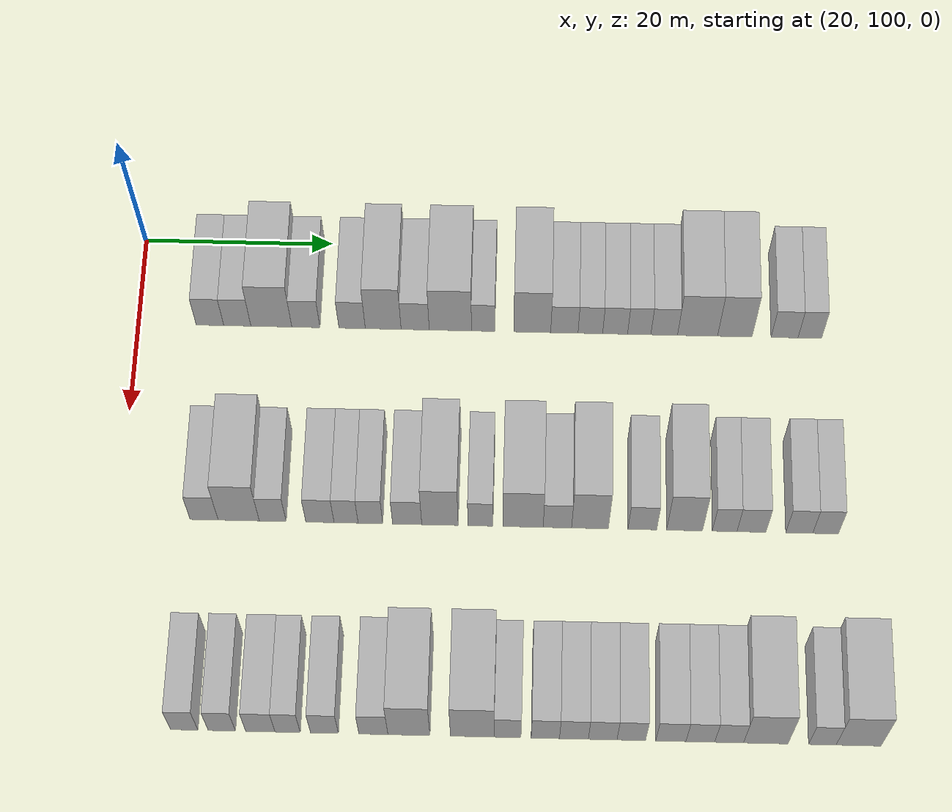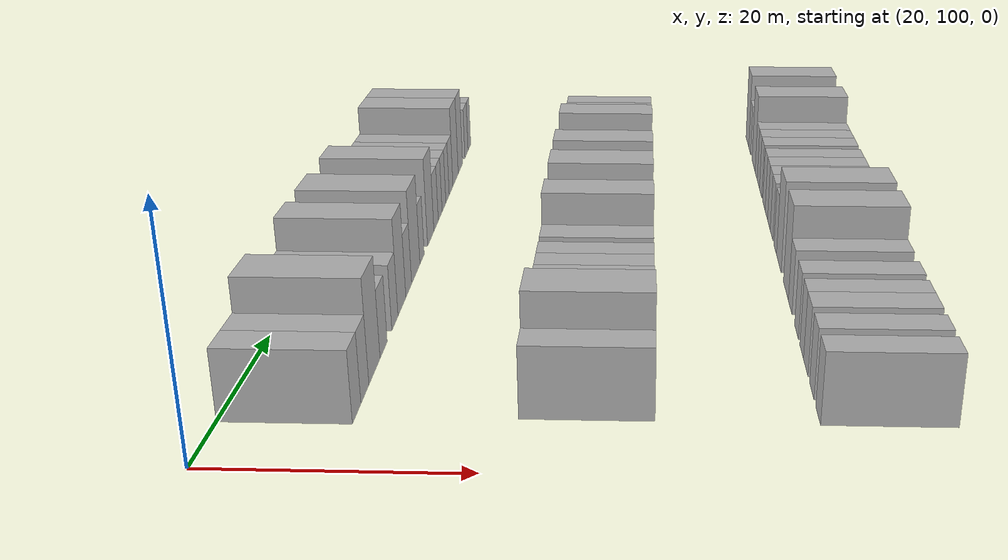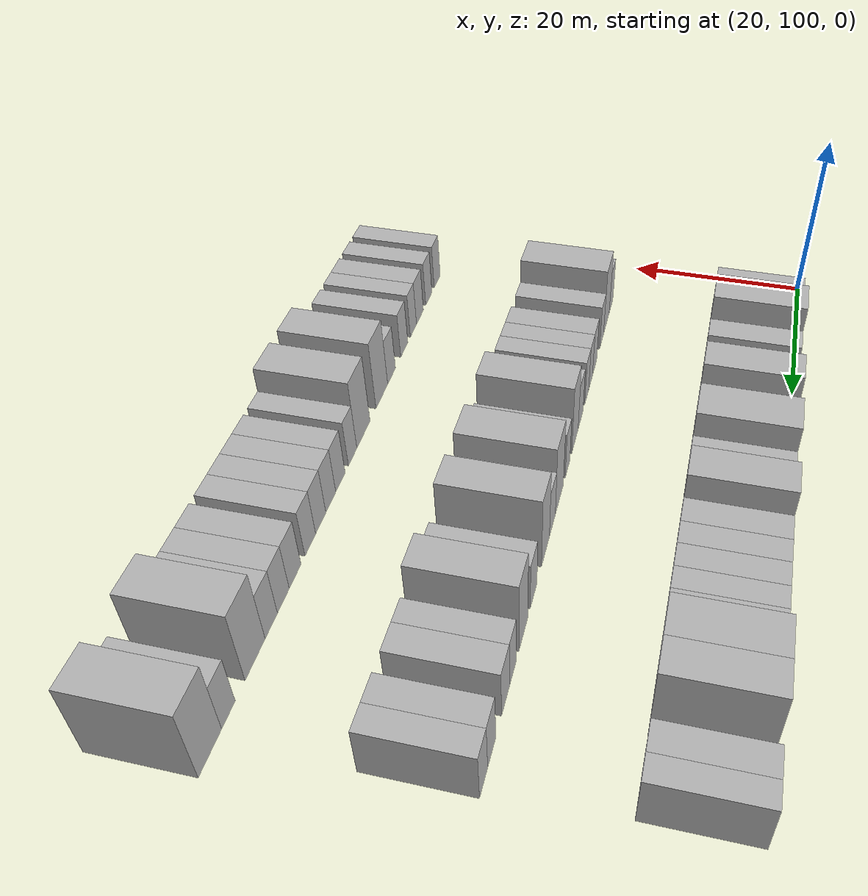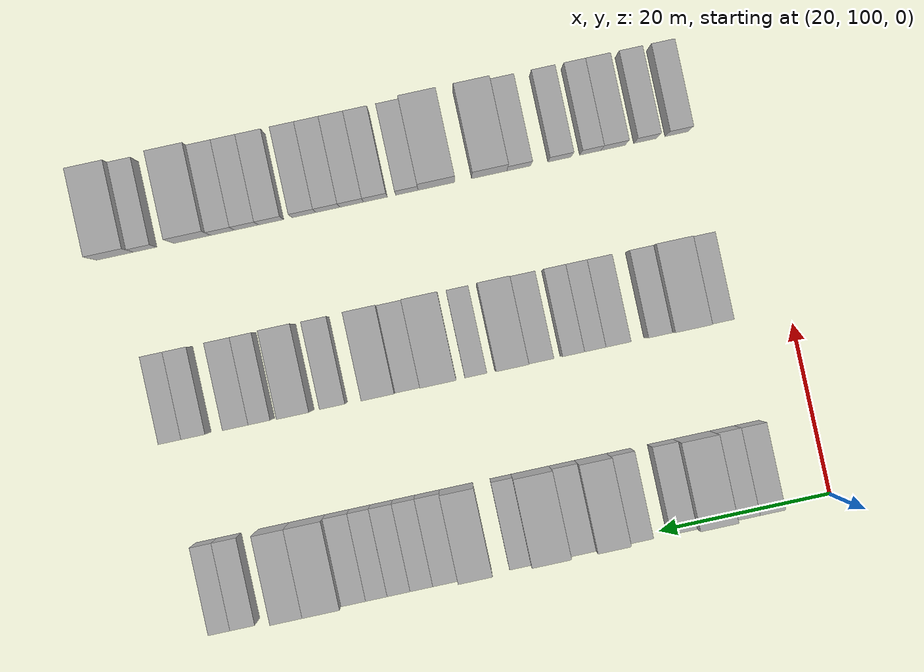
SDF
<sdf version="1.6">
 <world name="default">
  <model name="building_86">
   <static>1</static>
   <pose>25.0000 107.5922 0 0.000000 0.000000 0.000000</pose>
   <link name="link">
    <pose>0 0 3.00 0 0 0</pose>
    <collision name="collision"><geometry><box><size>10.0000 2.9048 6.0000</size></box></geometry></collision>
    <visual name="visual">
     <cast_shadows>0</cast_shadows>
     <geometry><box><size>10.0000 2.9048 6.0000</size></box></geometry>
     <material>
      <script>
       <uri>model://HANNAS_wall/materials/scripts</uri>
       <uri>model://HANNAS_wall/materials/textures</uri>
       <name>vrc/HANNAS_wall</name>
      </script>
     </material>
    </visual>
   </link>
  </model>
  <model name="building_87">
   <static>1</static>
   <pose>25.0000 110.4816 0 0.000000 0.000000 0.000000</pose>
   <link name="link">
    <pose>0 0 3.00 0 0 0</pose>
    <collision name="collision"><geometry><box><size>10.0000 2.8739 6.0000</size></box></geometry></collision>
    <visual name="visual">
     <cast_shadows>0</cast_shadows>
     <geometry><box><size>10.0000 2.8739 6.0000</size></box></geometry>
     <material>
      <script>
       <uri>model://HANNAS_wall/materials/scripts</uri>
       <uri>model://HANNAS_wall/materials/textures</uri>
       <name>vrc/HANNAS_wall</name>
      </script>
     </material>
    </visual>
   </link>
  </model>
  <model name="building_88">
   <static>1</static>
   <pose>25.0000 114.0790 0 0.000000 0.000000 0.000000</pose>
   <link name="link">
    <pose>0 0 4.50 0 0 0</pose>
    <collision name="collision"><geometry><box><size>10.0000 4.3209 9.0000</size></box></geometry></collision>
    <visual name="visual">
     <cast_shadows>0</cast_shadows>
     <geometry><box><size>10.0000 4.3209 9.0000</size></box></geometry>
     <material>
      <script>
       <uri>model://HANNAS_wall/materials/scripts</uri>
       <uri>model://HANNAS_wall/materials/textures</uri>
       <name>vrc/HANNAS_wall</name>
      </script>
     </material>
    </visual>
   </link>
  </model>
  <model name="building_89">
   <static>1</static>
   <pose>25.0000 117.7277 0 0.000000 0.000000 0.000000</pose>
   <link name="link">
    <pose>0 0 3.00 0 0 0</pose>
    <collision name="collision"><geometry><box><size>10.0000 2.9766 6.0000</size></box></geometry></collision>
    <visual name="visual">
     <cast_shadows>0</cast_shadows>
     <geometry><box><size>10.0000 2.9766 6.0000</size></box></geometry>
     <material>
      <script>
       <uri>model://HANNAS_wall/materials/scripts</uri>
       <uri>model://HANNAS_wall/materials/textures</uri>
       <name>vrc/HANNAS_wall</name>
      </script>
     </material>
    </visual>
   </link>
  </model>
  <model name="building_90">
   <static>1</static>
   <pose>25.0000 122.6110 0 0.000000 0.000000 0.000000</pose>
   <link name="link">
    <pose>0 0 3.00 0 0 0</pose>
    <collision name="collision"><geometry><box><size>10.0000 2.7901 6.0000</size></box></geometry></collision>
    <visual name="visual">
     <cast_shadows>0</cast_shadows>
     <geometry><box><size>10.0000 2.7901 6.0000</size></box></geometry>
     <material>
      <script>
       <uri>model://HANNAS_wall/materials/scripts</uri>
       <uri>model://HANNAS_wall/materials/textures</uri>
       <name>vrc/HANNAS_wall</name>
      </script>
     </material>
    </visual>
   </link>
  </model>
  <model name="building_91">
   <static>1</static>
   <pose>25.0000 125.8944 0 0.000000 0.000000 0.000000</pose>
   <link name="link">
    <pose>0 0 4.50 0 0 0</pose>
    <collision name="collision"><geometry><box><size>10.0000 3.7767 9.0000</size></box></geometry></collision>
    <visual name="visual">
     <cast_shadows>0</cast_shadows>
     <geometry><box><size>10.0000 3.7767 9.0000</size></box></geometry>
     <material>
      <script>
       <uri>model://HANNAS_wall/materials/scripts</uri>
       <uri>model://HANNAS_wall/materials/textures</uri>
       <name>vrc/HANNAS_wall</name>
      </script>
     </material>
    </visual>
   </link>
  </model>
  <model name="building_92">
   <static>1</static>
   <pose>25.0000 129.2664 0 0.000000 0.000000 0.000000</pose>
   <link name="link">
    <pose>0 0 3.00 0 0 0</pose>
    <collision name="collision"><geometry><box><size>10.0000 2.9674 6.0000</size></box></geometry></collision>
    <visual name="visual">
     <cast_shadows>0</cast_shadows>
     <geometry><box><size>10.0000 2.9674 6.0000</size></box></geometry>
     <material>
      <script>
       <uri>model://HANNAS_wall/materials/scripts</uri>
       <uri>model://HANNAS_wall/materials/textures</uri>
       <name>vrc/HANNAS_wall</name>
      </script>
     </material>
    </visual>
   </link>
  </model>
  <model name="building_93">
   <static>1</static>
   <pose>25.0000 132.9837 0 0.000000 0.000000 0.000000</pose>
   <link name="link">
    <pose>0 0 4.50 0 0 0</pose>
    <collision name="collision"><geometry><box><size>10.0000 4.4673 9.0000</size></box></geometry></collision>
    <visual name="visual">
     <cast_shadows>0</cast_shadows>
     <geometry><box><size>10.0000 4.4673 9.0000</size></box></geometry>
     <material>
      <script>
       <uri>model://HANNAS_wall/materials/scripts</uri>
       <uri>model://HANNAS_wall/materials/textures</uri>
       <name>vrc/HANNAS_wall</name>
      </script>
     </material>
    </visual>
   </link>
  </model>
  <model name="building_94">
   <static>1</static>
   <pose>25.0000 136.4413 0 0.000000 0.000000 0.000000</pose>
   <link name="link">
    <pose>0 0 3.00 0 0 0</pose>
    <collision name="collision"><geometry><box><size>10.0000 2.4478 6.0000</size></box></geometry></collision>
    <visual name="visual">
     <cast_shadows>0</cast_shadows>
     <geometry><box><size>10.0000 2.4478 6.0000</size></box></geometry>
     <material>
      <script>
       <uri>model://HANNAS_wall/materials/scripts</uri>
       <uri>model://HANNAS_wall/materials/textures</uri>
       <name>vrc/HANNAS_wall</name>
      </script>
     </material>
    </visual>
   </link>
  </model>
  <model name="building_95">
   <static>1</static>
   <pose>25.0000 141.6121 0 0.000000 0.000000 0.000000</pose>
   <link name="link">
    <pose>0 0 4.50 0 0 0</pose>
    <collision name="collision"><geometry><box><size>10.0000 3.8937 9.0000</size></box></geometry></collision>
    <visual name="visual">
     <cast_shadows>0</cast_shadows>
     <geometry><box><size>10.0000 3.8937 9.0000</size></box></geometry>
     <material>
      <script>
       <uri>model://HANNAS_wall/materials/scripts</uri>
       <uri>model://HANNAS_wall/materials/textures</uri>
       <name>vrc/HANNAS_wall</name>
      </script>
     </material>
    </visual>
   </link>
  </model>
  <model name="building_96">
   <static>1</static>
   <pose>25.0000 144.9991 0 0.000000 0.000000 0.000000</pose>
   <link name="link">
    <pose>0 0 3.00 0 0 0</pose>
    <collision name="collision"><geometry><box><size>10.0000 2.8804 6.0000</size></box></geometry></collision>
    <visual name="visual">
     <cast_shadows>0</cast_shadows>
     <geometry><box><size>10.0000 2.8804 6.0000</size></box></geometry>
     <material>
      <script>
       <uri>model://HANNAS_wall/materials/scripts</uri>
       <uri>model://HANNAS_wall/materials/textures</uri>
       <name>vrc/HANNAS_wall</name>
      </script>
     </material>
    </visual>
   </link>
  </model>
  <model name="building_97">
   <static>1</static>
   <pose>25.0000 147.7359 0 0.000000 0.000000 0.000000</pose>
   <link name="link">
    <pose>0 0 3.00 0 0 0</pose>
    <collision name="collision"><geometry><box><size>10.0000 2.5932 6.0000</size></box></geometry></collision>
    <visual name="visual">
     <cast_shadows>0</cast_shadows>
     <geometry><box><size>10.0000 2.5932 6.0000</size></box></geometry>
     <material>
      <script>
       <uri>model://HANNAS_wall/materials/scripts</uri>
       <uri>model://HANNAS_wall/materials/textures</uri>
       <name>vrc/HANNAS_wall</name>
      </script>
     </material>
    </visual>
   </link>
  </model>
  <model name="building_98">
   <static>1</static>
   <pose>25.0000 150.3441 0 0.000000 0.000000 0.000000</pose>
   <link name="link">
    <pose>0 0 3.00 0 0 0</pose>
    <collision name="collision"><geometry><box><size>10.0000 2.6233 6.0000</size></box></geometry></collision>
    <visual name="visual">
     <cast_shadows>0</cast_shadows>
     <geometry><box><size>10.0000 2.6233 6.0000</size></box></geometry>
     <material>
      <script>
       <uri>model://HANNAS_wall/materials/scripts</uri>
       <uri>model://HANNAS_wall/materials/textures</uri>
       <name>vrc/HANNAS_wall</name>
      </script>
     </material>
    </visual>
   </link>
  </model>
  <model name="building_99">
   <static>1</static>
   <pose>25.0000 152.8840 0 0.000000 0.000000 0.000000</pose>
   <link name="link">
    <pose>0 0 3.00 0 0 0</pose>
    <collision name="collision"><geometry><box><size>10.0000 2.4564 6.0000</size></box></geometry></collision>
    <visual name="visual">
     <cast_shadows>0</cast_shadows>
     <geometry><box><size>10.0000 2.4564 6.0000</size></box></geometry>
     <material>
      <script>
       <uri>model://HANNAS_wall/materials/scripts</uri>
       <uri>model://HANNAS_wall/materials/textures</uri>
       <name>vrc/HANNAS_wall</name>
      </script>
     </material>
    </visual>
   </link>
  </model>
  <model name="building_100">
   <static>1</static>
   <pose>25.0000 155.5164 0 0.000000 0.000000 0.000000</pose>
   <link name="link">
    <pose>0 0 3.00 0 0 0</pose>
    <collision name="collision"><geometry><box><size>10.0000 2.8085 6.0000</size></box></geometry></collision>
    <visual name="visual">
     <cast_shadows>0</cast_shadows>
     <geometry><box><size>10.0000 2.8085 6.0000</size></box></geometry>
     <material>
      <script>
       <uri>model://HANNAS_wall/materials/scripts</uri>
       <uri>model://HANNAS_wall/materials/textures</uri>
       <name>vrc/HANNAS_wall</name>
      </script>
     </material>
    </visual>
   </link>
  </model>
  <model name="building_101">
   <static>1</static>
   <pose>25.0000 159.0299 0 0.000000 0.000000 0.000000</pose>
   <link name="link">
    <pose>0 0 4.50 0 0 0</pose>
    <collision name="collision"><geometry><box><size>10.0000 4.2185 9.0000</size></box></geometry></collision>
    <visual name="visual">
     <cast_shadows>0</cast_shadows>
     <geometry><box><size>10.0000 4.2185 9.0000</size></box></geometry>
     <material>
      <script>
       <uri>model://HANNAS_wall/materials/scripts</uri>
       <uri>model://HANNAS_wall/materials/textures</uri>
       <name>vrc/HANNAS_wall</name>
      </script>
     </material>
    </visual>
   </link>
  </model>
  <model name="building_102">
   <static>1</static>
   <pose>25.0000 162.9549 0 0.000000 0.000000 0.000000</pose>
   <link name="link">
    <pose>0 0 4.50 0 0 0</pose>
    <collision name="collision"><geometry><box><size>10.0000 3.6315 9.0000</size></box></geometry></collision>
    <visual name="visual">
     <cast_shadows>0</cast_shadows>
     <geometry><box><size>10.0000 3.6315 9.0000</size></box></geometry>
     <material>
      <script>
       <uri>model://HANNAS_wall/materials/scripts</uri>
       <uri>model://HANNAS_wall/materials/textures</uri>
       <name>vrc/HANNAS_wall</name>
      </script>
     </material>
    </visual>
   </link>
  </model>
  <model name="building_103">
   <static>1</static>
   <pose>25.0000 168.1900 0 0.000000 0.000000 0.000000</pose>
   <link name="link">
    <pose>0 0 3.00 0 0 0</pose>
    <collision name="collision"><geometry><box><size>10.0000 2.8386 6.0000</size></box></geometry></collision>
    <visual name="visual">
     <cast_shadows>0</cast_shadows>
     <geometry><box><size>10.0000 2.8386 6.0000</size></box></geometry>
     <material>
      <script>
       <uri>model://HANNAS_wall/materials/scripts</uri>
       <uri>model://HANNAS_wall/materials/textures</uri>
       <name>vrc/HANNAS_wall</name>
      </script>
     </material>
    </visual>
   </link>
  </model>
  <model name="building_104">
   <static>1</static>
   <pose>25.0000 170.8511 0 0.000000 0.000000 0.000000</pose>
   <link name="link">
    <pose>0 0 3.00 0 0 0</pose>
    <collision name="collision"><geometry><box><size>10.0000 2.4836 6.0000</size></box></geometry></collision>
    <visual name="visual">
     <cast_shadows>0</cast_shadows>
     <geometry><box><size>10.0000 2.4836 6.0000</size></box></geometry>
     <material>
      <script>
       <uri>model://HANNAS_wall/materials/scripts</uri>
       <uri>model://HANNAS_wall/materials/textures</uri>
       <name>vrc/HANNAS_wall</name>
      </script>
     </material>
    </visual>
   </link>
  </model>
  <model name="building_216">
   <static>1</static>
   <pose>47.0000 108.6638 0 0.000000 0.000000 0.000000</pose>
   <link name="link">
    <pose>0 0 3.00 0 0 0</pose>
    <collision name="collision"><geometry><box><size>10.0000 2.8547 6.0000</size></box></geometry></collision>
    <visual name="visual">
     <cast_shadows>0</cast_shadows>
     <geometry><box><size>10.0000 2.8547 6.0000</size></box></geometry>
     <material>
      <script>
       <uri>model://HANNAS_wall/materials/scripts</uri>
       <uri>model://HANNAS_wall/materials/textures</uri>
       <name>vrc/HANNAS_wall</name>
      </script>
     </material>
    </visual>
   </link>
  </model>
  <model name="building_217">
   <static>1</static>
   <pose>47.0000 112.1832 0 0.000000 0.000000 0.000000</pose>
   <link name="link">
    <pose>0 0 4.50 0 0 0</pose>
    <collision name="collision"><geometry><box><size>10.0000 4.1841 9.0000</size></box></geometry></collision>
    <visual name="visual">
     <cast_shadows>0</cast_shadows>
     <geometry><box><size>10.0000 4.1841 9.0000</size></box></geometry>
     <material>
      <script>
       <uri>model://HANNAS_wall/materials/scripts</uri>
       <uri>model://HANNAS_wall/materials/textures</uri>
       <name>vrc/HANNAS_wall</name>
      </script>
     </material>
    </visual>
   </link>
  </model>
  <model name="building_218">
   <static>1</static>
   <pose>47.0000 115.6416 0 0.000000 0.000000 0.000000</pose>
   <link name="link">
    <pose>0 0 3.00 0 0 0</pose>
    <collision name="collision"><geometry><box><size>10.0000 2.7327 6.0000</size></box></geometry></collision>
    <visual name="visual">
     <cast_shadows>0</cast_shadows>
     <geometry><box><size>10.0000 2.7327 6.0000</size></box></geometry>
     <material>
      <script>
       <uri>model://HANNAS_wall/materials/scripts</uri>
       <uri>model://HANNAS_wall/materials/textures</uri>
       <name>vrc/HANNAS_wall</name>
      </script>
     </material>
    </visual>
   </link>
  </model>
  <model name="building_219">
   <static>1</static>
   <pose>47.0000 120.4412 0 0.000000 0.000000 0.000000</pose>
   <link name="link">
    <pose>0 0 3.00 0 0 0</pose>
    <collision name="collision"><geometry><box><size>10.0000 2.8663 6.0000</size></box></geometry></collision>
    <visual name="visual">
     <cast_shadows>0</cast_shadows>
     <geometry><box><size>10.0000 2.8663 6.0000</size></box></geometry>
     <material>
      <script>
       <uri>model://HANNAS_wall/materials/scripts</uri>
       <uri>model://HANNAS_wall/materials/textures</uri>
       <name>vrc/HANNAS_wall</name>
      </script>
     </material>
    </visual>
   </link>
  </model>
  <model name="building_220">
   <static>1</static>
   <pose>47.0000 123.0964 0 0.000000 0.000000 0.000000</pose>
   <link name="link">
    <pose>0 0 3.00 0 0 0</pose>
    <collision name="collision"><geometry><box><size>10.0000 2.4441 6.0000</size></box></geometry></collision>
    <visual name="visual">
     <cast_shadows>0</cast_shadows>
     <geometry><box><size>10.0000 2.4441 6.0000</size></box></geometry>
     <material>
      <script>
       <uri>model://HANNAS_wall/materials/scripts</uri>
       <uri>model://HANNAS_wall/materials/textures</uri>
       <name>vrc/HANNAS_wall</name>
      </script>
     </material>
    </visual>
   </link>
  </model>
  <model name="building_221">
   <static>1</static>
   <pose>47.0000 125.5714 0 0.000000 0.000000 0.000000</pose>
   <link name="link">
    <pose>0 0 3.00 0 0 0</pose>
    <collision name="collision"><geometry><box><size>10.0000 2.5059 6.0000</size></box></geometry></collision>
    <visual name="visual">
     <cast_shadows>0</cast_shadows>
     <geometry><box><size>10.0000 2.5059 6.0000</size></box></geometry>
     <material>
      <script>
       <uri>model://HANNAS_wall/materials/scripts</uri>
       <uri>model://HANNAS_wall/materials/textures</uri>
       <name>vrc/HANNAS_wall</name>
      </script>
     </material>
    </visual>
   </link>
  </model>
  <model name="building_222">
   <static>1</static>
   <pose>47.0000 129.3030 0 0.000000 0.000000 0.000000</pose>
   <link name="link">
    <pose>0 0 3.00 0 0 0</pose>
    <collision name="collision"><geometry><box><size>10.0000 2.9573 6.0000</size></box></geometry></collision>
    <visual name="visual">
     <cast_shadows>0</cast_shadows>
     <geometry><box><size>10.0000 2.9573 6.0000</size></box></geometry>
     <material>
      <script>
       <uri>model://HANNAS_wall/materials/scripts</uri>
       <uri>model://HANNAS_wall/materials/textures</uri>
       <name>vrc/HANNAS_wall</name>
      </script>
     </material>
    </visual>
   </link>
  </model>
  <model name="building_223">
   <static>1</static>
   <pose>47.0000 132.6286 0 0.000000 0.000000 0.000000</pose>
   <link name="link">
    <pose>0 0 4.50 0 0 0</pose>
    <collision name="collision"><geometry><box><size>10.0000 3.6940 9.0000</size></box></geometry></collision>
    <visual name="visual">
     <cast_shadows>0</cast_shadows>
     <geometry><box><size>10.0000 3.6940 9.0000</size></box></geometry>
     <material>
      <script>
       <uri>model://HANNAS_wall/materials/scripts</uri>
       <uri>model://HANNAS_wall/materials/textures</uri>
       <name>vrc/HANNAS_wall</name>
      </script>
     </material>
    </visual>
   </link>
  </model>
  <model name="building_224">
   <static>1</static>
   <pose>47.0000 136.7348 0 0.000000 0.000000 0.000000</pose>
   <link name="link">
    <pose>0 0 3.00 0 0 0</pose>
    <collision name="collision"><geometry><box><size>10.0000 2.5184 6.0000</size></box></geometry></collision>
    <visual name="visual">
     <cast_shadows>0</cast_shadows>
     <geometry><box><size>10.0000 2.5184 6.0000</size></box></geometry>
     <material>
      <script>
       <uri>model://HANNAS_wall/materials/scripts</uri>
       <uri>model://HANNAS_wall/materials/textures</uri>
       <name>vrc/HANNAS_wall</name>
      </script>
     </material>
    </visual>
   </link>
  </model>
  <model name="building_225">
   <static>1</static>
   <pose>47.0000 141.0443 0 0.000000 0.000000 0.000000</pose>
   <link name="link">
    <pose>0 0 4.50 0 0 0</pose>
    <collision name="collision"><geometry><box><size>10.0000 4.1006 9.0000</size></box></geometry></collision>
    <visual name="visual">
     <cast_shadows>0</cast_shadows>
     <geometry><box><size>10.0000 4.1006 9.0000</size></box></geometry>
     <material>
      <script>
       <uri>model://HANNAS_wall/materials/scripts</uri>
       <uri>model://HANNAS_wall/materials/textures</uri>
       <name>vrc/HANNAS_wall</name>
      </script>
     </material>
    </visual>
   </link>
  </model>
  <model name="building_226">
   <static>1</static>
   <pose>47.0000 144.5346 0 0.000000 0.000000 0.000000</pose>
   <link name="link">
    <pose>0 0 3.00 0 0 0</pose>
    <collision name="collision"><geometry><box><size>10.0000 2.8799 6.0000</size></box></geometry></collision>
    <visual name="visual">
     <cast_shadows>0</cast_shadows>
     <geometry><box><size>10.0000 2.8799 6.0000</size></box></geometry>
     <material>
      <script>
       <uri>model://HANNAS_wall/materials/scripts</uri>
       <uri>model://HANNAS_wall/materials/textures</uri>
       <name>vrc/HANNAS_wall</name>
      </script>
     </material>
    </visual>
   </link>
  </model>
  <model name="building_227">
   <static>1</static>
   <pose>47.0000 147.8356 0 0.000000 0.000000 0.000000</pose>
   <link name="link">
    <pose>0 0 4.50 0 0 0</pose>
    <collision name="collision"><geometry><box><size>10.0000 3.7221 9.0000</size></box></geometry></collision>
    <visual name="visual">
     <cast_shadows>0</cast_shadows>
     <geometry><box><size>10.0000 3.7221 9.0000</size></box></geometry>
     <material>
      <script>
       <uri>model://HANNAS_wall/materials/scripts</uri>
       <uri>model://HANNAS_wall/materials/textures</uri>
       <name>vrc/HANNAS_wall</name>
      </script>
     </material>
    </visual>
   </link>
  </model>
  <model name="building_228">
   <static>1</static>
   <pose>47.0000 153.1495 0 0.000000 0.000000 0.000000</pose>
   <link name="link">
    <pose>0 0 3.00 0 0 0</pose>
    <collision name="collision"><geometry><box><size>10.0000 2.9057 6.0000</size></box></geometry></collision>
    <visual name="visual">
     <cast_shadows>0</cast_shadows>
     <geometry><box><size>10.0000 2.9057 6.0000</size></box></geometry>
     <material>
      <script>
       <uri>model://HANNAS_wall/materials/scripts</uri>
       <uri>model://HANNAS_wall/materials/textures</uri>
       <name>vrc/HANNAS_wall</name>
      </script>
     </material>
    </visual>
   </link>
  </model>
  <model name="building_229">
   <static>1</static>
   <pose>47.0000 157.4212 0 0.000000 0.000000 0.000000</pose>
   <link name="link">
    <pose>0 0 4.50 0 0 0</pose>
    <collision name="collision"><geometry><box><size>10.0000 3.6376 9.0000</size></box></geometry></collision>
    <visual name="visual">
     <cast_shadows>0</cast_shadows>
     <geometry><box><size>10.0000 3.6376 9.0000</size></box></geometry>
     <material>
      <script>
       <uri>model://HANNAS_wall/materials/scripts</uri>
       <uri>model://HANNAS_wall/materials/textures</uri>
       <name>vrc/HANNAS_wall</name>
      </script>
     </material>
    </visual>
   </link>
  </model>
  <model name="building_230">
   <static>1</static>
   <pose>47.0000 161.4919 0 0.000000 0.000000 0.000000</pose>
   <link name="link">
    <pose>0 0 3.00 0 0 0</pose>
    <collision name="collision"><geometry><box><size>10.0000 2.5037 6.0000</size></box></geometry></collision>
    <visual name="visual">
     <cast_shadows>0</cast_shadows>
     <geometry><box><size>10.0000 2.5037 6.0000</size></box></geometry>
     <material>
      <script>
       <uri>model://HANNAS_wall/materials/scripts</uri>
       <uri>model://HANNAS_wall/materials/textures</uri>
       <name>vrc/HANNAS_wall</name>
      </script>
     </material>
    </visual>
   </link>
  </model>
  <model name="building_231">
   <static>1</static>
   <pose>47.0000 164.2093 0 0.000000 0.000000 0.000000</pose>
   <link name="link">
    <pose>0 0 3.00 0 0 0</pose>
    <collision name="collision"><geometry><box><size>10.0000 2.9311 6.0000</size></box></geometry></collision>
    <visual name="visual">
     <cast_shadows>0</cast_shadows>
     <geometry><box><size>10.0000 2.9311 6.0000</size></box></geometry>
     <material>
      <script>
       <uri>model://HANNAS_wall/materials/scripts</uri>
       <uri>model://HANNAS_wall/materials/textures</uri>
       <name>vrc/HANNAS_wall</name>
      </script>
     </material>
    </visual>
   </link>
  </model>
  <model name="building_232">
   <static>1</static>
   <pose>47.0000 169.0432 0 0.000000 0.000000 0.000000</pose>
   <link name="link">
    <pose>0 0 3.00 0 0 0</pose>
    <collision name="collision"><geometry><box><size>10.0000 2.7368 6.0000</size></box></geometry></collision>
    <visual name="visual">
     <cast_shadows>0</cast_shadows>
     <geometry><box><size>10.0000 2.7368 6.0000</size></box></geometry>
     <material>
      <script>
       <uri>model://HANNAS_wall/materials/scripts</uri>
       <uri>model://HANNAS_wall/materials/textures</uri>
       <name>vrc/HANNAS_wall</name>
      </script>
     </material>
    </visual>
   </link>
  </model>
  <model name="building_233">
   <static>1</static>
   <pose>47.0000 171.7100 0 0.000000 0.000000 0.000000</pose>
   <link name="link">
    <pose>0 0 3.00 0 0 0</pose>
    <collision name="collision"><geometry><box><size>10.0000 2.5970 6.0000</size></box></geometry></collision>
    <visual name="visual">
     <cast_shadows>0</cast_shadows>
     <geometry><box><size>10.0000 2.5970 6.0000</size></box></geometry>
     <material>
      <script>
       <uri>model://HANNAS_wall/materials/scripts</uri>
       <uri>model://HANNAS_wall/materials/textures</uri>
       <name>vrc/HANNAS_wall</name>
      </script>
     </material>
    </visual>
   </link>
  </model>
  <model name="building_340">
   <static>1</static>
   <pose>69.0000 108.4082 0 0.000000 0.000000 0.000000</pose>
   <link name="link">
    <pose>0 0 3.00 0 0 0</pose>
    <collision name="collision"><geometry><box><size>10.0000 2.6851 6.0000</size></box></geometry></collision>
    <visual name="visual">
     <cast_shadows>0</cast_shadows>
     <geometry><box><size>10.0000 2.6851 6.0000</size></box></geometry>
     <material>
      <script>
       <uri>model://HANNAS_wall/materials/scripts</uri>
       <uri>model://HANNAS_wall/materials/textures</uri>
       <name>vrc/HANNAS_wall</name>
      </script>
     </material>
    </visual>
   </link>
  </model>
  <model name="building_341">
   <static>1</static>
   <pose>69.0000 112.0849 0 0.000000 0.000000 0.000000</pose>
   <link name="link">
    <pose>0 0 3.00 0 0 0</pose>
    <collision name="collision"><geometry><box><size>10.0000 2.6683 6.0000</size></box></geometry></collision>
    <visual name="visual">
     <cast_shadows>0</cast_shadows>
     <geometry><box><size>10.0000 2.6683 6.0000</size></box></geometry>
     <material>
      <script>
       <uri>model://HANNAS_wall/materials/scripts</uri>
       <uri>model://HANNAS_wall/materials/textures</uri>
       <name>vrc/HANNAS_wall</name>
      </script>
     </material>
    </visual>
   </link>
  </model>
  <model name="building_342">
   <static>1</static>
   <pose>69.0000 115.8454 0 0.000000 0.000000 0.000000</pose>
   <link name="link">
    <pose>0 0 3.00 0 0 0</pose>
    <collision name="collision"><geometry><box><size>10.0000 2.8527 6.0000</size></box></geometry></collision>
    <visual name="visual">
     <cast_shadows>0</cast_shadows>
     <geometry><box><size>10.0000 2.8527 6.0000</size></box></geometry>
     <material>
      <script>
       <uri>model://HANNAS_wall/materials/scripts</uri>
       <uri>model://HANNAS_wall/materials/textures</uri>
       <name>vrc/HANNAS_wall</name>
      </script>
     </material>
    </visual>
   </link>
  </model>
  <model name="building_343">
   <static>1</static>
   <pose>69.0000 118.5086 0 0.000000 0.000000 0.000000</pose>
   <link name="link">
    <pose>0 0 3.00 0 0 0</pose>
    <collision name="collision"><geometry><box><size>10.0000 2.4737 6.0000</size></box></geometry></collision>
    <visual name="visual">
     <cast_shadows>0</cast_shadows>
     <geometry><box><size>10.0000 2.4737 6.0000</size></box></geometry>
     <material>
      <script>
       <uri>model://HANNAS_wall/materials/scripts</uri>
       <uri>model://HANNAS_wall/materials/textures</uri>
       <name>vrc/HANNAS_wall</name>
      </script>
     </material>
    </visual>
   </link>
  </model>
  <model name="building_344">
   <static>1</static>
   <pose>69.0000 122.1058 0 0.000000 0.000000 0.000000</pose>
   <link name="link">
    <pose>0 0 3.00 0 0 0</pose>
    <collision name="collision"><geometry><box><size>10.0000 2.7208 6.0000</size></box></geometry></collision>
    <visual name="visual">
     <cast_shadows>0</cast_shadows>
     <geometry><box><size>10.0000 2.7208 6.0000</size></box></geometry>
     <material>
      <script>
       <uri>model://HANNAS_wall/materials/scripts</uri>
       <uri>model://HANNAS_wall/materials/textures</uri>
       <name>vrc/HANNAS_wall</name>
      </script>
     </material>
    </visual>
   </link>
  </model>
  <model name="building_345">
   <static>1</static>
   <pose>69.0000 126.8794 0 0.000000 0.000000 0.000000</pose>
   <link name="link">
    <pose>0 0 3.00 0 0 0</pose>
    <collision name="collision"><geometry><box><size>10.0000 2.8263 6.0000</size></box></geometry></collision>
    <visual name="visual">
     <cast_shadows>0</cast_shadows>
     <geometry><box><size>10.0000 2.8263 6.0000</size></box></geometry>
     <material>
      <script>
       <uri>model://HANNAS_wall/materials/scripts</uri>
       <uri>model://HANNAS_wall/materials/textures</uri>
       <name>vrc/HANNAS_wall</name>
      </script>
     </material>
    </visual>
   </link>
  </model>
  <model name="building_346">
   <static>1</static>
   <pose>69.0000 130.3436 0 0.000000 0.000000 0.000000</pose>
   <link name="link">
    <pose>0 0 4.50 0 0 0</pose>
    <collision name="collision"><geometry><box><size>10.0000 4.1021 9.0000</size></box></geometry></collision>
    <visual name="visual">
     <cast_shadows>0</cast_shadows>
     <geometry><box><size>10.0000 4.1021 9.0000</size></box></geometry>
     <material>
      <script>
       <uri>model://HANNAS_wall/materials/scripts</uri>
       <uri>model://HANNAS_wall/materials/textures</uri>
       <name>vrc/HANNAS_wall</name>
      </script>
     </material>
    </visual>
   </link>
  </model>
  <model name="building_347">
   <static>1</static>
   <pose>69.0000 136.5255 0 0.000000 0.000000 0.000000</pose>
   <link name="link">
    <pose>0 0 4.50 0 0 0</pose>
    <collision name="collision"><geometry><box><size>10.0000 4.2618 9.0000</size></box></geometry></collision>
    <visual name="visual">
     <cast_shadows>0</cast_shadows>
     <geometry><box><size>10.0000 4.2618 9.0000</size></box></geometry>
     <material>
      <script>
       <uri>model://HANNAS_wall/materials/scripts</uri>
       <uri>model://HANNAS_wall/materials/textures</uri>
       <name>vrc/HANNAS_wall</name>
      </script>
     </material>
    </visual>
   </link>
  </model>
  <model name="building_348">
   <static>1</static>
   <pose>69.0000 139.9568 0 0.000000 0.000000 0.000000</pose>
   <link name="link">
    <pose>0 0 3.00 0 0 0</pose>
    <collision name="collision"><geometry><box><size>10.0000 2.6008 6.0000</size></box></geometry></collision>
    <visual name="visual">
     <cast_shadows>0</cast_shadows>
     <geometry><box><size>10.0000 2.6008 6.0000</size></box></geometry>
     <material>
      <script>
       <uri>model://HANNAS_wall/materials/scripts</uri>
       <uri>model://HANNAS_wall/materials/textures</uri>
       <name>vrc/HANNAS_wall</name>
      </script>
     </material>
    </visual>
   </link>
  </model>
  <model name="building_349">
   <static>1</static>
   <pose>69.0000 143.6363 0 0.000000 0.000000 0.000000</pose>
   <link name="link">
    <pose>0 0 3.00 0 0 0</pose>
    <collision name="collision"><geometry><box><size>10.0000 2.7582 6.0000</size></box></geometry></collision>
    <visual name="visual">
     <cast_shadows>0</cast_shadows>
     <geometry><box><size>10.0000 2.7582 6.0000</size></box></geometry>
     <material>
      <script>
       <uri>model://HANNAS_wall/materials/scripts</uri>
       <uri>model://HANNAS_wall/materials/textures</uri>
       <name>vrc/HANNAS_wall</name>
      </script>
     </material>
    </visual>
   </link>
  </model>
  <model name="building_350">
   <static>1</static>
   <pose>69.0000 146.4167 0 0.000000 0.000000 0.000000</pose>
   <link name="link">
    <pose>0 0 3.00 0 0 0</pose>
    <collision name="collision"><geometry><box><size>10.0000 2.8025 6.0000</size></box></geometry></collision>
    <visual name="visual">
     <cast_shadows>0</cast_shadows>
     <geometry><box><size>10.0000 2.8025 6.0000</size></box></geometry>
     <material>
      <script>
       <uri>model://HANNAS_wall/materials/scripts</uri>
       <uri>model://HANNAS_wall/materials/textures</uri>
       <name>vrc/HANNAS_wall</name>
      </script>
     </material>
    </visual>
   </link>
  </model>
  <model name="building_351">
   <static>1</static>
   <pose>69.0000 149.2148 0 0.000000 0.000000 0.000000</pose>
   <link name="link">
    <pose>0 0 3.00 0 0 0</pose>
    <collision name="collision"><geometry><box><size>10.0000 2.7937 6.0000</size></box></geometry></collision>
    <visual name="visual">
     <cast_shadows>0</cast_shadows>
     <geometry><box><size>10.0000 2.7937 6.0000</size></box></geometry>
     <material>
      <script>
       <uri>model://HANNAS_wall/materials/scripts</uri>
       <uri>model://HANNAS_wall/materials/textures</uri>
       <name>vrc/HANNAS_wall</name>
      </script>
     </material>
    </visual>
   </link>
  </model>
  <model name="building_352">
   <static>1</static>
   <pose>69.0000 152.0028 0 0.000000 0.000000 0.000000</pose>
   <link name="link">
    <pose>0 0 3.00 0 0 0</pose>
    <collision name="collision"><geometry><box><size>10.0000 2.7824 6.0000</size></box></geometry></collision>
    <visual name="visual">
     <cast_shadows>0</cast_shadows>
     <geometry><box><size>10.0000 2.7824 6.0000</size></box></geometry>
     <material>
      <script>
       <uri>model://HANNAS_wall/materials/scripts</uri>
       <uri>model://HANNAS_wall/materials/textures</uri>
       <name>vrc/HANNAS_wall</name>
      </script>
     </material>
    </visual>
   </link>
  </model>
  <model name="building_353">
   <static>1</static>
   <pose>69.0000 155.8595 0 0.000000 0.000000 0.000000</pose>
   <link name="link">
    <pose>0 0 3.00 0 0 0</pose>
    <collision name="collision"><geometry><box><size>10.0000 2.9311 6.0000</size></box></geometry></collision>
    <visual name="visual">
     <cast_shadows>0</cast_shadows>
     <geometry><box><size>10.0000 2.9311 6.0000</size></box></geometry>
     <material>
      <script>
       <uri>model://HANNAS_wall/materials/scripts</uri>
       <uri>model://HANNAS_wall/materials/textures</uri>
       <name>vrc/HANNAS_wall</name>
      </script>
     </material>
    </visual>
   </link>
  </model>
  <model name="building_354">
   <static>1</static>
   <pose>69.0000 158.7254 0 0.000000 0.000000 0.000000</pose>
   <link name="link">
    <pose>0 0 3.00 0 0 0</pose>
    <collision name="collision"><geometry><box><size>10.0000 2.8007 6.0000</size></box></geometry></collision>
    <visual name="visual">
     <cast_shadows>0</cast_shadows>
     <geometry><box><size>10.0000 2.8007 6.0000</size></box></geometry>
     <material>
      <script>
       <uri>model://HANNAS_wall/materials/scripts</uri>
       <uri>model://HANNAS_wall/materials/textures</uri>
       <name>vrc/HANNAS_wall</name>
      </script>
     </material>
    </visual>
   </link>
  </model>
  <model name="building_355">
   <static>1</static>
   <pose>69.0000 161.5271 0 0.000000 0.000000 0.000000</pose>
   <link name="link">
    <pose>0 0 3.00 0 0 0</pose>
    <collision name="collision"><geometry><box><size>10.0000 2.8027 6.0000</size></box></geometry></collision>
    <visual name="visual">
     <cast_shadows>0</cast_shadows>
     <geometry><box><size>10.0000 2.8027 6.0000</size></box></geometry>
     <material>
      <script>
       <uri>model://HANNAS_wall/materials/scripts</uri>
       <uri>model://HANNAS_wall/materials/textures</uri>
       <name>vrc/HANNAS_wall</name>
      </script>
     </material>
    </visual>
   </link>
  </model>
  <model name="building_356">
   <static>1</static>
   <pose>69.0000 165.0897 0 0.000000 0.000000 0.000000</pose>
   <link name="link">
    <pose>0 0 4.50 0 0 0</pose>
    <collision name="collision"><geometry><box><size>10.0000 4.3223 9.0000</size></box></geometry></collision>
    <visual name="visual">
     <cast_shadows>0</cast_shadows>
     <geometry><box><size>10.0000 4.3223 9.0000</size></box></geometry>
     <material>
      <script>
       <uri>model://HANNAS_wall/materials/scripts</uri>
       <uri>model://HANNAS_wall/materials/textures</uri>
       <name>vrc/HANNAS_wall</name>
      </script>
     </material>
    </visual>
   </link>
  </model>
  <model name="building_357">
   <static>1</static>
   <pose>69.0000 170.5908 0 0.000000 0.000000 0.000000</pose>
   <link name="link">
    <pose>0 0 3.00 0 0 0</pose>
    <collision name="collision"><geometry><box><size>10.0000 2.6800 6.0000</size></box></geometry></collision>
    <visual name="visual">
     <cast_shadows>0</cast_shadows>
     <geometry><box><size>10.0000 2.6800 6.0000</size></box></geometry>
     <material>
      <script>
       <uri>model://HANNAS_wall/materials/scripts</uri>
       <uri>model://HANNAS_wall/materials/textures</uri>
       <name>vrc/HANNAS_wall</name>
      </script>
     </material>
    </visual>
   </link>
  </model>
  <model name="building_358">
   <static>1</static>
   <pose>69.0000 174.1089 0 0.000000 0.000000 0.000000</pose>
   <link name="link">
    <pose>0 0 4.50 0 0 0</pose>
    <collision name="collision"><geometry><box><size>10.0000 4.3562 9.0000</size></box></geometry></collision>
    <visual name="visual">
     <cast_shadows>0</cast_shadows>
     <geometry><box><size>10.0000 4.3562 9.0000</size></box></geometry>
     <material>
      <script>
       <uri>model://HANNAS_wall/materials/scripts</uri>
       <uri>model://HANNAS_wall/materials/textures</uri>
       <name>vrc/HANNAS_wall</name>
      </script>
     </material>
    </visual>
   </link>
  </model>
 </world>
</sdf>
